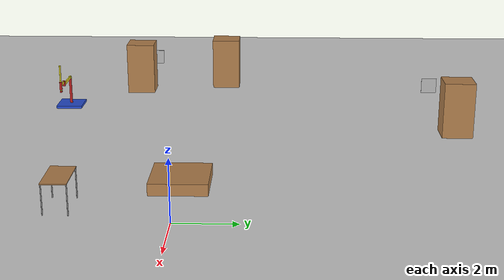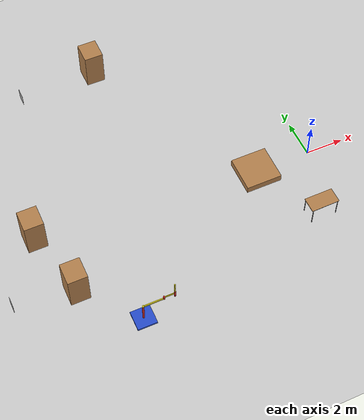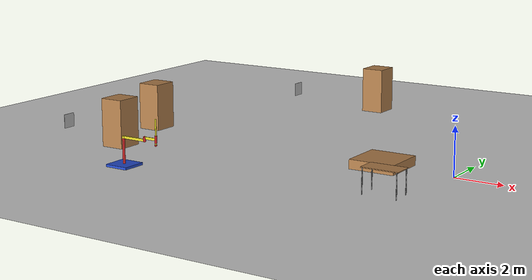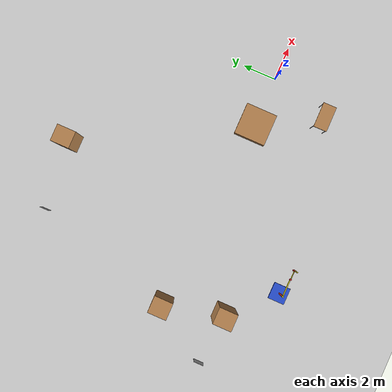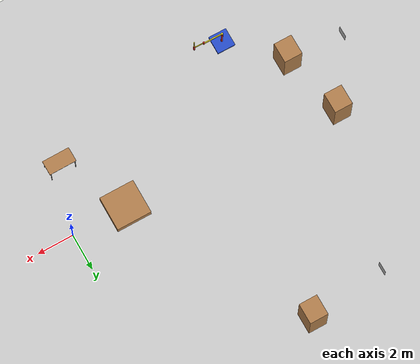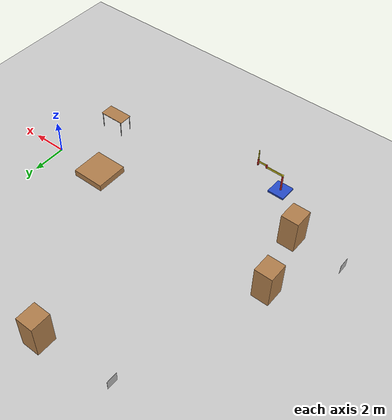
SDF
<sdf version="1.7">
 <world name="default">
  <model name="ground_plane">
   <static>1</static>
   <link name="link">
    <collision name="collision">
     <geometry><plane><normal>0 0 1</normal><size>25 25</size></plane></geometry>
     <surface><friction><ode><mu>100</mu><mu2>50</mu2></ode></friction></surface>
    </collision>
    <visual name="visual">
     <cast_shadows>0</cast_shadows>
     <geometry><plane><normal>0 0 1</normal><size>25 25</size></plane></geometry>
     <material>
      <script><uri>file://media/materials/scripts/gazebo.material</uri><name>Gazebo/Grey</name></script>
     </material>
    </visual>
   </link>
  </model>
  <model name="table">
   <static>0</static>
   <link name="link">
    <collision name="surface">
     <pose>0 0 1 0 -0 0</pose>
     <geometry><box><size>1.5 0.8 0.03</size></box></geometry>
     <surface><friction><ode><mu>0.6</mu><mu2>0.6</mu2></ode></friction></surface>
    </collision>
    <visual name="visual1">
     <pose>0 0 1 0 -0 0</pose>
     <geometry><box><size>1.5 0.8 0.03</size></box></geometry>
     <material>
      <script><uri>file://media/materials/scripts/gazebo.material</uri><name>Gazebo/Wood</name></script>
     </material>
    </visual>
    <collision name="front_left_leg">
     <pose>0.68 0.38 0.5 0 -0 0</pose>
     <geometry><cylinder><radius>0.02</radius><length>1</length></cylinder></geometry>
    </collision>
    <visual name="front_left_leg">
     <pose>0.68 0.38 0.5 0 -0 0</pose>
     <geometry><cylinder><radius>0.02</radius><length>1</length></cylinder></geometry>
     <material>
      <script><uri>file://media/materials/scripts/gazebo.material</uri><name>Gazebo/Grey</name></script>
     </material>
    </visual>
    <collision name="front_right_leg">
     <pose>0.68 -0.38 0.5 0 -0 0</pose>
     <geometry><cylinder><radius>0.02</radius><length>1</length></cylinder></geometry>
    </collision>
    <visual name="front_right_leg">
     <pose>0.68 -0.38 0.5 0 -0 0</pose>
     <geometry><cylinder><radius>0.02</radius><length>1</length></cylinder></geometry>
     <material>
      <script><uri>file://media/materials/scripts/gazebo.material</uri><name>Gazebo/Grey</name></script>
     </material>
    </visual>
    <collision name="back_right_leg">
     <pose>-0.68 -0.38 0.5 0 -0 0</pose>
     <geometry><cylinder><radius>0.02</radius><length>1</length></cylinder></geometry>
    </collision>
    <visual name="back_right_leg">
     <pose>-0.68 -0.38 0.5 0 -0 0</pose>
     <geometry><cylinder><radius>0.02</radius><length>1</length></cylinder></geometry>
     <material>
      <script><uri>file://media/materials/scripts/gazebo.material</uri><name>Gazebo/Grey</name></script>
     </material>
    </visual>
    <collision name="back_left_leg">
     <pose>-0.68 0.38 0.5 0 -0 0</pose>
     <geometry><cylinder><radius>0.02</radius><length>1</length></cylinder></geometry>
    </collision>
    <visual name="back_left_leg">
     <pose>-0.68 0.38 0.5 0 -0 0</pose>
     <geometry><cylinder><radius>0.02</radius><length>1</length></cylinder></geometry>
     <material>
      <script><uri>file://media/materials/scripts/gazebo.material</uri><name>Gazebo/Grey</name></script>
     </material>
    </visual>
    <inertial>
     <inertia><ixx>1</ixx><ixy>0</ixy><ixz>0</ixz><iyy>1</iyy><iyz>0</iyz><izz>1</izz></inertia>
     <mass>1</mass>
    </inertial>
   </link>
   <pose>-1.15125 -3.44041 0 0 -0 0.008058</pose>
  </model>
  <model name="unit_box_0">
   <pose>-2.99922 0.000754 0.193597 -1.5e-05 -0 -0.000955</pose>
   <link name="link">
    <inertial>
     <mass>1</mass>
     <inertia>
      <ixx>0.166667</ixx>
      <ixy>0</ixy>
      <ixz>0</ixz>
      <iyy>0.166667</iyy>
      <iyz>0</iyz>
      <izz>0.166667</izz>
     </inertia>
    </inertial>
    <collision name="collision"><geometry><box><size>1.90824 1.89174 0.387223</size></box></geometry></collision>
    <visual name="visual">
     <geometry><box><size>1.90824 1.89174 0.387223</size></box></geometry>
     <material>
      <script><uri>file://media/materials/scripts/gazebo.material</uri><name>Gazebo/Wood</name></script>
     </material>
    </visual>
   </link>
   <static>0</static>
  </model>
  <model name="static_apriltag_6">
   <link name="link">
    <pose>0 0 0 -1.57 1.57 -0</pose>
    <inertial>
     <mass>0.39</mass>
     <inertia><ixx>0.00058</ixx><ixy>0</ixy><ixz>0</ixz><iyy>0.00058</iyy><iyz>0</iyz><izz>0.00019</izz></inertia>
    </inertial>
    <collision name="collision"><geometry><box><size>0.6 0.6 0.01</size></box></geometry></collision>
    <visual name="visual">
     <geometry><box><size>0.6 0.6 0.01</size></box></geometry>
     <material>
      <script>
       <uri>model://apriltag/materials/scripts</uri>
       <uri>model://apriltag/materials/textures</uri>
       <name>apriltag/Diffuse6</name>
      </script>
     </material>
    </visual>
    <gravity>0</gravity>
   </link>
   <pose>-16.951 -2.45614 0.650971 -0.000796 0.000796 -1.57</pose>
   <static>1</static>
   <pose>3.43144 4.34187 0 0 -0 0</pose>
  </model>
  <model name="static_apriltag_7">
   <link name="link">
    <inertial>
     <mass>0.39</mass>
     <inertia><ixx>0.00058</ixx><ixy>0</ixy><ixz>0</ixz><iyy>0.00058</iyy><iyz>0</iyz><izz>0.00019</izz></inertia>
    </inertial>
    <collision name="collision"><geometry><box><size>0.6 0.6 0.01</size></box></geometry></collision>
    <visual name="visual">
     <geometry><box><size>0.6 0.6 0.01</size></box></geometry>
     <material>
      <script>
       <uri>model://apriltag/materials/scripts</uri>
       <uri>model://apriltag/materials/textures</uri>
       <name>apriltag/Diffuse7</name>
      </script>
     </material>
    </visual>
    <gravity>0</gravity>
   </link>
   <pose>-12.4494 9.17587 0.65 1.57 -0 1.57</pose>
   <static>1</static>
   <pose>3.12393 4.47604 0 0 -0 0</pose>
  </model>
  <model name="simple_arm">
   <link name="arm_base">
    <inertial>
     <pose>0 0 0.00099 0 -0 0</pose>
     <inertia><ixx>1.11</ixx><ixy>0</ixy><ixz>0</ixz><iyy>100.11</iyy><iyz>0</iyz><izz>1.01</izz></inertia>
     <mass>101</mass>
    </inertial>
    <collision name="arm_base_geom">
     <pose>0 0 0.05 0 -0 0</pose>
     <geometry><box><size>1 1 0.1</size></box></geometry>
    </collision>
    <visual name="arm_base_geom_visual">
     <pose>0 0 0.05 0 -0 0</pose>
     <geometry><box><size>1 1 0.1</size></box></geometry>
     <material>
      <script><uri>file://media/materials/scripts/gazebo.material</uri><name>Gazebo/Blue</name></script>
     </material>
    </visual>
    <collision name="arm_base_geom_arm_trunk">
     <pose>0 0 0.6 0 -0 0</pose>
     <geometry><cylinder><radius>0.05</radius><length>1</length></cylinder></geometry>
    </collision>
    <visual name="arm_base_geom_arm_trunk_visual">
     <pose>0 0 0.6 0 -0 0</pose>
     <geometry><cylinder><radius>0.05</radius><length>1</length></cylinder></geometry>
     <material>
      <script><uri>file://media/materials/scripts/gazebo.material</uri><name>Gazebo/Red</name></script>
     </material>
    </visual>
   </link>
   <link name="arm_shoulder_pan">
    <pose>0 0 1.1 0 -0 0</pose>
    <inertial>
     <pose>0.045455 0 0 0 -0 0</pose>
     <inertia><ixx>0.011</ixx><ixy>0</ixy><ixz>0</ixz><iyy>0.0225</iyy><iyz>0</iyz><izz>0.0135</izz></inertia>
     <mass>1.1</mass>
    </inertial>
    <collision name="arm_shoulder_pan_geom">
     <pose>0 0 0.05 0 -0 0</pose>
     <geometry><cylinder><radius>0.05</radius><length>0.1</length></cylinder></geometry>
    </collision>
    <visual name="arm_shoulder_pan_geom_visual">
     <pose>0 0 0.05 0 -0 0</pose>
     <geometry><cylinder><radius>0.05</radius><length>0.1</length></cylinder></geometry>
     <material>
      <script><uri>file://media/materials/scripts/gazebo.material</uri><name>Gazebo/Yellow</name></script>
     </material>
    </visual>
    <collision name="arm_shoulder_pan_geom_arm_shoulder">
     <pose>0.55 0 0.05 0 -0 0</pose>
     <geometry><box><size>1 0.05 0.1</size></box></geometry>
    </collision>
    <visual name="arm_shoulder_pan_geom_arm_shoulder_visual">
     <pose>0.55 0 0.05 0 -0 0</pose>
     <geometry><box><size>1 0.05 0.1</size></box></geometry>
     <material>
      <script><uri>file://media/materials/scripts/gazebo.material</uri><name>Gazebo/Yellow</name></script>
     </material>
    </visual>
   </link>
   <link name="arm_elbow_pan">
    <pose>1.05 0 1.1 0 -0 0</pose>
    <inertial>
     <pose>0.0875 0 0.083333 0 -0 0</pose>
     <inertia>
      <ixx>0.031</ixx>
      <ixy>0</ixy>
      <ixz>0.005</ixz>
      <iyy>0.07275</iyy>
      <iyz>0</iyz>
      <izz>0.04475</izz>
     </inertia>
     <mass>1.2</mass>
    </inertial>
    <collision name="arm_elbow_pan_geom">
     <pose>0 0 0.1 0 -0 0</pose>
     <geometry><cylinder><radius>0.05</radius><length>0.2</length></cylinder></geometry>
    </collision>
    <visual name="arm_elbow_pan_geom_visual">
     <pose>0 0 0.1 0 -0 0</pose>
     <geometry><cylinder><radius>0.05</radius><length>0.2</length></cylinder></geometry>
     <material>
      <script><uri>file://media/materials/scripts/gazebo.material</uri><name>Gazebo/Red</name></script>
     </material>
    </visual>
    <collision name="arm_elbow_pan_geom_arm_elbow">
     <pose>0.3 0 0.15 0 -0 0</pose>
     <geometry><box><size>0.5 0.03 0.1</size></box></geometry>
    </collision>
    <visual name="arm_elbow_pan_geom_arm_elbow_visual">
     <pose>0.3 0 0.15 0 -0 0</pose>
     <geometry><box><size>0.5 0.03 0.1</size></box></geometry>
     <material>
      <script><uri>file://media/materials/scripts/gazebo.material</uri><name>Gazebo/Yellow</name></script>
     </material>
    </visual>
    <collision name="arm_elbow_pan_geom_arm_wrist">
     <pose>0.55 0 0.15 0 -0 0</pose>
     <geometry><cylinder><radius>0.05</radius><length>0.3</length></cylinder></geometry>
    </collision>
    <visual name="arm_elbow_pan_geom_arm_wrist_visual">
     <pose>0.55 0 0.15 0 -0 0</pose>
     <geometry><cylinder><radius>0.05</radius><length>0.3</length></cylinder></geometry>
     <material>
      <script><uri>file://media/materials/scripts/gazebo.material</uri><name>Gazebo/Red</name></script>
     </material>
    </visual>
   </link>
   <link name="arm_wrist_lift">
    <pose>1.6 0 1.05 0 -0 0</pose>
    <inertial>
     <inertia><ixx>0.01</ixx><ixy>0</ixy><ixz>0</ixz><iyy>0.01</iyy><iyz>0</iyz><izz>0.001</izz></inertia>
     <mass>0.1</mass>
    </inertial>
    <collision name="arm_wrist_lift_geom">
     <pose>0 0 0.5 0 -0 0</pose>
     <geometry><cylinder><radius>0.03</radius><length>1</length></cylinder></geometry>
    </collision>
    <visual name="arm_wrist_lift_geom_visual">
     <pose>0 0 0.5 0 -0 0</pose>
     <geometry><cylinder><radius>0.03</radius><length>1</length></cylinder></geometry>
     <material>
      <script><uri>file://media/materials/scripts/gazebo.material</uri><name>Gazebo/Yellow</name></script>
     </material>
    </visual>
   </link>
   <link name="arm_wrist_roll">
    <pose>1.6 0 1 0 -0 0</pose>
    <inertial>
     <inertia><ixx>0.01</ixx><ixy>0</ixy><ixz>0</ixz><iyy>0.01</iyy><iyz>0</iyz><izz>0.001</izz></inertia>
     <mass>0.1</mass>
    </inertial>
    <collision name="arm_wrist_roll_geom">
     <pose>0 0 0.025 0 -0 0</pose>
     <geometry><cylinder><radius>0.05</radius><length>0.05</length></cylinder></geometry>
    </collision>
    <visual name="arm_wrist_roll_geom_visual">
     <pose>0 0 0.025 0 -0 0</pose>
     <geometry><cylinder><radius>0.05</radius><length>0.05</length></cylinder></geometry>
     <material>
      <script><uri>file://media/materials/scripts/gazebo.material</uri><name>Gazebo/Red</name></script>
     </material>
    </visual>
   </link>
   <joint name="arm_shoulder_pan_joint" type="revolute">
    <parent>arm_base</parent>
    <child>arm_shoulder_pan</child>
    <axis>
     <dynamics>
      <damping>1</damping>
      <friction>0</friction>
      <spring_reference>0</spring_reference>
      <spring_stiffness>0</spring_stiffness>
     </dynamics>
     <xyz expressed_in="__model__">0 0 1</xyz>
     <limit><lower>-1e+16</lower><upper>1e+16</upper></limit>
    </axis>
   </joint>
   <joint name="arm_elbow_pan_joint" type="revolute">
    <parent>arm_shoulder_pan</parent>
    <child>arm_elbow_pan</child>
    <axis>
     <dynamics>
      <damping>1</damping>
      <friction>0</friction>
      <spring_reference>0</spring_reference>
      <spring_stiffness>0</spring_stiffness>
     </dynamics>
     <xyz expressed_in="__model__">0 0 1</xyz>
     <limit><lower>-1e+16</lower><upper>1e+16</upper></limit>
    </axis>
   </joint>
   <joint name="arm_wrist_lift_joint" type="prismatic">
    <parent>arm_elbow_pan</parent>
    <child>arm_wrist_lift</child>
    <axis>
     <dynamics>
      <damping>1</damping>
      <friction>0</friction>
      <spring_reference>0</spring_reference>
      <spring_stiffness>0</spring_stiffness>
     </dynamics>
     <limit><lower>-0.8</lower><upper>0.1</upper></limit>
     <xyz expressed_in="__model__">0 0 1</xyz>
    </axis>
   </joint>
   <joint name="arm_wrist_roll_joint" type="revolute">
    <parent>arm_wrist_lift</parent>
    <child>arm_wrist_roll</child>
    <axis>
     <dynamics>
      <damping>1</damping>
      <friction>0</friction>
      <spring_reference>0</spring_reference>
      <spring_stiffness>0</spring_stiffness>
     </dynamics>
     <limit><lower>-2.99999</lower><upper>2.99999</upper></limit>
     <xyz expressed_in="__model__">0 0 1</xyz>
    </axis>
   </joint>
   <pose>-11.5183 -5.27429 -0 0 -0 -0.006278</pose>
  </model>
  <model name="unit_box_clone">
   <pose>-14.7311 0.824735 1.01795 4e-06 -2e-06 -0.000229</pose>
   <link name="link">
    <inertial>
     <mass>1</mass>
     <inertia>
      <ixx>0.166667</ixx>
      <ixy>0</ixy>
      <ixz>0</ixz>
      <iyy>0.166667</iyy>
      <iyz>0</iyz>
      <izz>0.166667</izz>
     </inertia>
    </inertial>
    <collision name="collision"><geometry><box><size>1 1.11313 2.03591</size></box></geometry></collision>
    <visual name="visual">
     <geometry><box><size>1 1.11313 2.03591</size></box></geometry>
     <material>
      <script><uri>file://media/materials/scripts/gazebo.material</uri><name>Gazebo/Wood</name></script>
     </material>
    </visual>
   </link>
   <static>0</static>
  </model>
  <model name="unit_box_clone_0">
   <pose>-13.8647 -2.69652 1.01795 4e-06 -2e-06 -0.000231</pose>
   <link name="link">
    <inertial>
     <mass>1</mass>
     <inertia>
      <ixx>0.166667</ixx>
      <ixy>0</ixy>
      <ixz>0</ixz>
      <iyy>0.166667</iyy>
      <iyz>0</iyz>
      <izz>0.166667</izz>
     </inertia>
    </inertial>
    <collision name="collision"><geometry><box><size>1 1.11313 2.03591</size></box></geometry></collision>
    <visual name="visual">
     <geometry><box><size>1 1.11313 2.03591</size></box></geometry>
     <material>
      <script><uri>file://media/materials/scripts/gazebo.material</uri><name>Gazebo/Wood</name></script>
     </material>
    </visual>
   </link>
   <static>0</static>
  </model>
  <model name="unit_box_clone_1">
   <pose>-8.24968 9.56532 1.01795 4e-06 -2e-06 -0.000229</pose>
   <link name="link">
    <inertial>
     <mass>1</mass>
     <inertia>
      <ixx>0.166667</ixx>
      <ixy>0</ixy>
      <ixz>0</ixz>
      <iyy>0.166667</iyy>
      <iyz>0</iyz>
      <izz>0.166667</izz>
     </inertia>
    </inertial>
    <collision name="collision"><geometry><box><size>1 1.11313 2.03591</size></box></geometry></collision>
    <visual name="visual">
     <geometry><box><size>1 1.11313 2.03591</size></box></geometry>
     <material>
      <script><uri>file://media/materials/scripts/gazebo.material</uri><name>Gazebo/Wood</name></script>
     </material>
    </visual>
   </link>
   <static>0</static>
  </model>
 </world>
</sdf>
